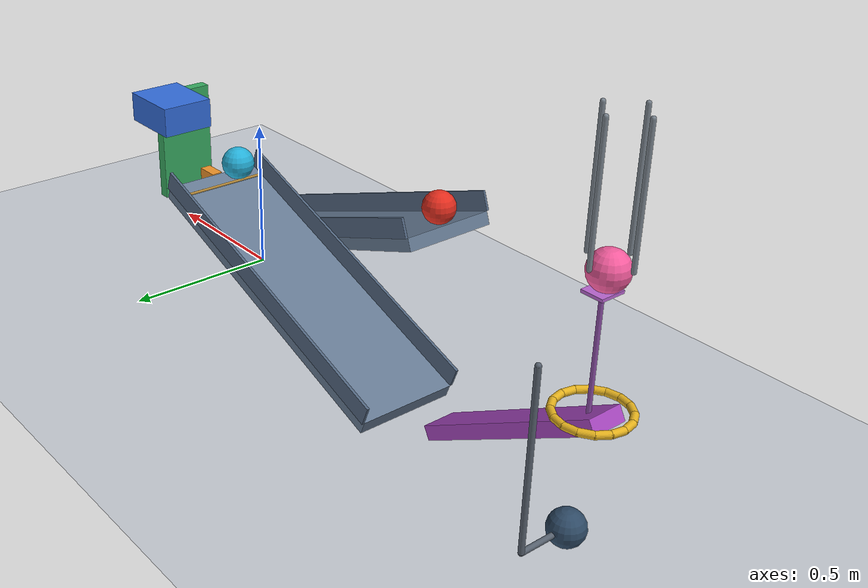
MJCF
<mujoco model="passive_chain_reaction">
  <compiler angle="degree" autolimits="true" inertiafromgeom="true"/>
  <option timestep="0.002" gravity="0 0 -9.81" integrator="implicitfast" solver="Newton" iterations="100" tolerance="1e-10"/>
  <size nconmax="300" njmax="1200"/>
  <visual>
    <global azimuth="110" elevation="-20"/>
    <map znear="0.01" zfar="30"/>
  </visual>

  <!-- All initial velocities are zero. Contact damping approximates e = 0.05.
       Sliding friction is 0.70; small rolling friction helps loose balls settle. -->

  <worldbody>
    <light name="main_light" pos="-0.5 -2 4" dir="0.1 0.4 -1" diffuse="0.8 0.8 0.8"/>
    <camera name="overview" pos="-3 -4 2.4" xyaxes="0.85 -0.53 0 0.23 0.37 0.90"/>

    <geom name="floor" type="plane" size="6 4 0.1" friction="0.70 0.001 0.002" condim="6" solref="0.006 0.6901" solimp="0.95 0.99 0.001" rgba="0.78 0.80 0.83 1"/>

    <!-- Ramp1's upper surface runs from z=0.49202 to z=0.15. -->
    <body name="ramp1" pos="-0.476687 0 0.302216" quat="0.984807753 0 0.173648178 0">
      <geom name="ramp1_deck" type="box" size="0.50 0.15 0.02" friction="0.70 0.001 0.002" condim="6" solref="0.006 0.6901" solimp="0.95 0.99 0.001" rgba="0.40 0.48 0.58 1"/>
      <geom name="ramp1_rail_left" type="box" pos="0 -0.154 0.05" size="0.50 0.004 0.03" friction="0.70 0.001 0.002" condim="6" solref="0.006 0.6901" solimp="0.95 0.99 0.001" rgba="0.32 0.40 0.50 1"/>
      <geom name="ramp1_rail_right" type="box" pos="0 0.154 0.05" size="0.50 0.004 0.03" friction="0.70 0.001 0.002" condim="6" solref="0.006 0.6901" solimp="0.95 0.99 0.001" rgba="0.32 0.40 0.50 1"/>
    </body>

    <body name="ball1" pos="-0.899099 0 0.530455">
      <freejoint name="ball1_free"/>
      <geom name="ball1_sphere" type="sphere" size="0.05" mass="0.20" friction="0.70 0.001 0.002" condim="6" solref="0.006 0.6901" solimp="0.95 0.99 0.001" rgba="0.90 0.18 0.12 1"/>
    </body>

    <!-- The first domino's near face is 0.10 m beyond ramp1's exit. -->
    <body name="domino1" pos="0.14 0 0.12">
      <freejoint name="domino1_free"/>
      <geom name="domino1_block" type="box" size="0.04 0.02 0.12" mass="0.25" friction="0.70 0.001 0.002" condim="6" solref="0.006 0.6901" solimp="0.95 0.99 0.001" rgba="0.94 0.72 0.18 1"/>
    </body>

    <body name="domino2" pos="0.32 0 0.12">
      <freejoint name="domino2_free"/>
      <geom name="domino2_block" type="box" size="0.04 0.02 0.12" mass="0.25" friction="0.70 0.001 0.002" condim="6" solref="0.006 0.6901" solimp="0.95 0.99 0.001" rgba="0.94 0.58 0.16 1"/>
    </body>

    <!-- Domino2 strikes below the hinge. The upper panel strikes the elevated cart. -->
    <body name="flap1" pos="0.50 0 0.27">
      <joint name="flap1_hinge" type="hinge" axis="0 -1 0" damping="0.04" limited="true" range="0 65" solreflimit="0.004 1" solimplimit="0.99 0.999 0.0001"/>
      <geom name="flap1_panel" type="box" pos="0 0 0.03" size="0.02 0.10 0.20" mass="0.30" friction="0.70 0.001 0.002" condim="6" solref="0.006 0.6901" solimp="0.95 0.99 0.001" rgba="0.22 0.67 0.38 1"/>
    </body>

    <body name="cart1" pos="0.32 0.15 0.505">
      <joint name="cart1_slide" type="slide" axis="-1 0 0" damping="0.20" limited="true" range="0 0.65" solreflimit="0.004 1" solimplimit="0.99 0.999 0.0001"/>
      <geom name="cart1_chassis" type="box" size="0.11 0.09 0.05" mass="0.50" friction="0.70 0.001 0.002" condim="6" solref="0.006 0.6901" solimp="0.95 0.99 0.001" rgba="0.20 0.43 0.86 1"/>
    </body>

    <!-- Ramp2 descends toward negative x in a separate lane.
         Its small transverse lip retains ball2 until the cart arrives. -->
    <body name="ramp2" pos="-0.702413 0.34 0.302216" quat="0.984807753 0 -0.173648178 0">
      <geom name="ramp2_deck" type="box" size="0.50 0.15 0.02" friction="0.70 0.001 0.002" condim="6" solref="0.006 0.6901" solimp="0.95 0.99 0.001" rgba="0.40 0.48 0.58 1"/>
      <geom name="ramp2_rail_left" type="box" pos="0 -0.154 0.05" size="0.50 0.004 0.03" friction="0.70 0.001 0.002" condim="6" solref="0.006 0.6901" solimp="0.95 0.99 0.001" rgba="0.32 0.40 0.50 1"/>
      <geom name="ramp2_rail_right" type="box" pos="0 0.154 0.05" size="0.50 0.004 0.03" friction="0.70 0.001 0.002" condim="6" solref="0.006 0.6901" solimp="0.95 0.99 0.001" rgba="0.32 0.40 0.50 1"/>
      <geom name="ramp2_retaining_lip" type="capsule" fromto="0.446716 -0.145 0.024 0.446716 0.145 0.024" size="0.004" friction="0.70 0.001 0.002" condim="6" solref="0.006 0.6901" solimp="0.95 0.99 0.001" rgba="0.72 0.55 0.23 1"/>
    </body>

    <!-- The cart's leading face reaches this sphere after 0.45 m of travel. -->
    <body name="ball2" pos="-0.28 0.27 0.530455">
      <freejoint name="ball2_free"/>
      <geom name="ball2_sphere" type="sphere" size="0.05" mass="0.20" friction="0.70 0.001 0.002" condim="6" solref="0.006 0.6901" solimp="0.95 0.99 0.001" rgba="0.15 0.70 0.86 1"/>
    </body>

    <body name="lever1" pos="-1.568908 0.34 0.30" quat="0.965925826 0 0.258819045 0">
      <joint name="lever1_hinge" type="hinge" axis="0 1 0" damping="0.04" stiffness="0.33" springref="60" limited="true" range="0 45" solreflimit="0.004 1" solimplimit="0.99 0.999 0.0001"/>
      <geom name="lever1_panel" type="box" size="0.30 0.05 0.02" mass="0.485" friction="0.70 0.001 0.002" condim="6" solref="0.006 0.6901" solimp="0.95 0.99 0.001" rgba="0.66 0.28 0.76 1"/>
      <geom name="lever1_carrier_stem" type="capsule" fromto="-0.25 0 0.02 -0.399840 0 0.279532" size="0.006" mass="0.010" friction="0.70 0.001 0.002" condim="6" solref="0.006 0.6901" solimp="0.95 0.99 0.001" rgba="0.55 0.31 0.65 1"/>
      <geom name="lever1_carrier_pad" type="box" pos="-0.401840 0 0.282996" quat="0.965925826 0 -0.258819045 0" size="0.030 0.035 0.004" mass="0.005" friction="0.70 0.001 0.002" condim="6" solref="0.006 0.6901" solimp="0.95 0.99 0.001" rgba="0.73 0.40 0.82 1"/>
    </body>

    <body name="ball3" pos="-1.785414 0.34 0.80">
      <freejoint name="ball3_free"/>
      <geom name="ball3_sphere" type="sphere" size="0.05" mass="0.20" friction="0.70 0.001 0.002" condim="6" solref="0.006 0.6901" solimp="0.95 0.99 0.001" rgba="0.96 0.36 0.62 1"/>
    </body>

    <!-- A short open guide redirects the launch vertically without constraining
         ball3's free joint or obstructing its subsequent downward passage. -->
    <body name="launch_guide" pos="-1.785414 0.34 0">
      <geom name="launch_guide_east" type="capsule" fromto="0.063 0 0.82 0.063 0 1.15" size="0.006" friction="0.70 0.001 0.002" condim="6" solref="0.006 0.6901" solimp="0.95 0.99 0.001" rgba="0.48 0.52 0.56 1"/>
      <geom name="launch_guide_west" type="capsule" fromto="-0.063 0 0.82 -0.063 0 1.15" size="0.006" friction="0.70 0.001 0.002" condim="6" solref="0.006 0.6901" solimp="0.95 0.99 0.001" rgba="0.48 0.52 0.56 1"/>
      <geom name="launch_guide_north" type="capsule" fromto="0 0.063 0.82 0 0.063 1.15" size="0.006" friction="0.70 0.001 0.002" condim="6" solref="0.006 0.6901" solimp="0.95 0.99 0.001" rgba="0.48 0.52 0.56 1"/>
      <geom name="launch_guide_south" type="capsule" fromto="0 -0.063 0.82 0 -0.063 1.15" size="0.006" friction="0.70 0.001 0.002" condim="6" solref="0.006 0.6901" solimp="0.95 0.99 0.001" rgba="0.48 0.52 0.56 1"/>
    </body>

    <!-- Polygonal capsule ring: 0.16 m minimum clear diameter.
         Its horizontal center plane is 0.35 m below ball3's initial center. -->
    <body name="ring1" pos="-1.785414 0.34 0.45">
      <geom name="ring1_segment01" type="capsule" fromto="0.091762 0 0 0.084779 0.035116 0" size="0.01" friction="0.70 0.001 0.002" condim="6" solref="0.006 0.6901" solimp="0.95 0.99 0.001" rgba="0.90 0.70 0.12 1"/>
      <geom name="ring1_segment02" type="capsule" fromto="0.084779 0.035116 0 0.064886 0.064886 0" size="0.01" friction="0.70 0.001 0.002" condim="6" solref="0.006 0.6901" solimp="0.95 0.99 0.001" rgba="0.90 0.70 0.12 1"/>
      <geom name="ring1_segment03" type="capsule" fromto="0.064886 0.064886 0 0.035116 0.084779 0" size="0.01" friction="0.70 0.001 0.002" condim="6" solref="0.006 0.6901" solimp="0.95 0.99 0.001" rgba="0.90 0.70 0.12 1"/>
      <geom name="ring1_segment04" type="capsule" fromto="0.035116 0.084779 0 0 0.091762 0" size="0.01" friction="0.70 0.001 0.002" condim="6" solref="0.006 0.6901" solimp="0.95 0.99 0.001" rgba="0.90 0.70 0.12 1"/>
      <geom name="ring1_segment05" type="capsule" fromto="0 0.091762 0 -0.035116 0.084779 0" size="0.01" friction="0.70 0.001 0.002" condim="6" solref="0.006 0.6901" solimp="0.95 0.99 0.001" rgba="0.90 0.70 0.12 1"/>
      <geom name="ring1_segment06" type="capsule" fromto="-0.035116 0.084779 0 -0.064886 0.064886 0" size="0.01" friction="0.70 0.001 0.002" condim="6" solref="0.006 0.6901" solimp="0.95 0.99 0.001" rgba="0.90 0.70 0.12 1"/>
      <geom name="ring1_segment07" type="capsule" fromto="-0.064886 0.064886 0 -0.084779 0.035116 0" size="0.01" friction="0.70 0.001 0.002" condim="6" solref="0.006 0.6901" solimp="0.95 0.99 0.001" rgba="0.90 0.70 0.12 1"/>
      <geom name="ring1_segment08" type="capsule" fromto="-0.084779 0.035116 0 -0.091762 0 0" size="0.01" friction="0.70 0.001 0.002" condim="6" solref="0.006 0.6901" solimp="0.95 0.99 0.001" rgba="0.90 0.70 0.12 1"/>
      <geom name="ring1_segment09" type="capsule" fromto="-0.091762 0 0 -0.084779 -0.035116 0" size="0.01" friction="0.70 0.001 0.002" condim="6" solref="0.006 0.6901" solimp="0.95 0.99 0.001" rgba="0.90 0.70 0.12 1"/>
      <geom name="ring1_segment10" type="capsule" fromto="-0.084779 -0.035116 0 -0.064886 -0.064886 0" size="0.01" friction="0.70 0.001 0.002" condim="6" solref="0.006 0.6901" solimp="0.95 0.99 0.001" rgba="0.90 0.70 0.12 1"/>
      <geom name="ring1_segment11" type="capsule" fromto="-0.064886 -0.064886 0 -0.035116 -0.084779 0" size="0.01" friction="0.70 0.001 0.002" condim="6" solref="0.006 0.6901" solimp="0.95 0.99 0.001" rgba="0.90 0.70 0.12 1"/>
      <geom name="ring1_segment12" type="capsule" fromto="-0.035116 -0.084779 0 0 -0.091762 0" size="0.01" friction="0.70 0.001 0.002" condim="6" solref="0.006 0.6901" solimp="0.95 0.99 0.001" rgba="0.90 0.70 0.12 1"/>
      <geom name="ring1_segment13" type="capsule" fromto="0 -0.091762 0 0.035116 -0.084779 0" size="0.01" friction="0.70 0.001 0.002" condim="6" solref="0.006 0.6901" solimp="0.95 0.99 0.001" rgba="0.90 0.70 0.12 1"/>
      <geom name="ring1_segment14" type="capsule" fromto="0.035116 -0.084779 0 0.064886 -0.064886 0" size="0.01" friction="0.70 0.001 0.002" condim="6" solref="0.006 0.6901" solimp="0.95 0.99 0.001" rgba="0.90 0.70 0.12 1"/>
      <geom name="ring1_segment15" type="capsule" fromto="0.064886 -0.064886 0 0.084779 -0.035116 0" size="0.01" friction="0.70 0.001 0.002" condim="6" solref="0.006 0.6901" solimp="0.95 0.99 0.001" rgba="0.90 0.70 0.12 1"/>
      <geom name="ring1_segment16" type="capsule" fromto="0.084779 -0.035116 0 0.091762 0 0" size="0.01" friction="0.70 0.001 0.002" condim="6" solref="0.006 0.6901" solimp="0.95 0.99 0.001" rgba="0.90 0.70 0.12 1"/>
    </body>

    <!-- The shaft is offset 0.15 m along the hinge axis, outside the ring.
         The longer bracket preserves the original bob position.
         The bob remains 0.50 m below the hinge. -->
    <body name="pendulum1" pos="-1.750414 0.49 0.606325">
      <joint name="pendulum1_hinge" type="hinge" axis="0 1 0" damping="0.04"/>
      <geom name="pendulum1_shaft" type="capsule" fromto="0 0 0 0 0 -0.50" size="0.008" mass="0.045" friction="0.70 0.001 0.002" condim="6" solref="0.006 0.6901" solimp="0.95 0.99 0.001" rgba="0.34 0.38 0.43 1"/>
      <geom name="pendulum1_bob_bracket" type="capsule" fromto="0 0 -0.50 0 -0.15 -0.50" size="0.008" mass="0.005" friction="0.70 0.001 0.002" condim="6" solref="0.006 0.6901" solimp="0.95 0.99 0.001" rgba="0.34 0.38 0.43 1"/>
      <geom name="pendulum1_bob" type="sphere" pos="0 -0.15 -0.50" size="0.05" mass="0.30" friction="0.70 0.001 0.002" condim="6" solref="0.006 0.6901" solimp="0.95 0.99 0.001" rgba="0.18 0.29 0.40 1"/>
    </body>
  </worldbody>

  <keyframe>
    <key name="start"/>
  </keyframe>
</mujoco>
